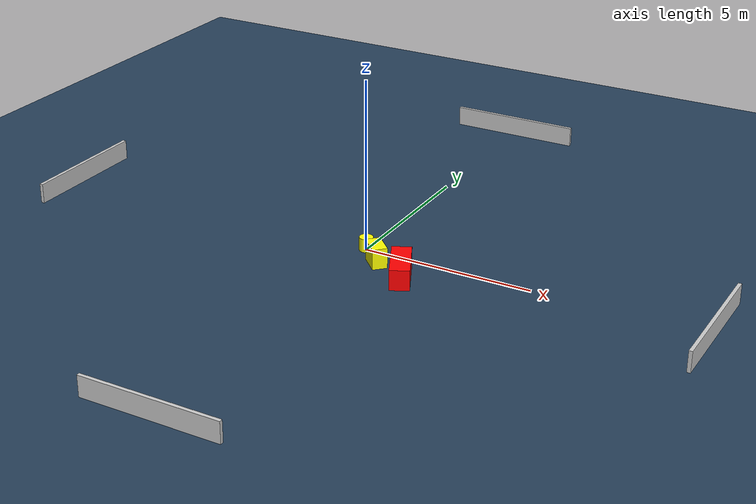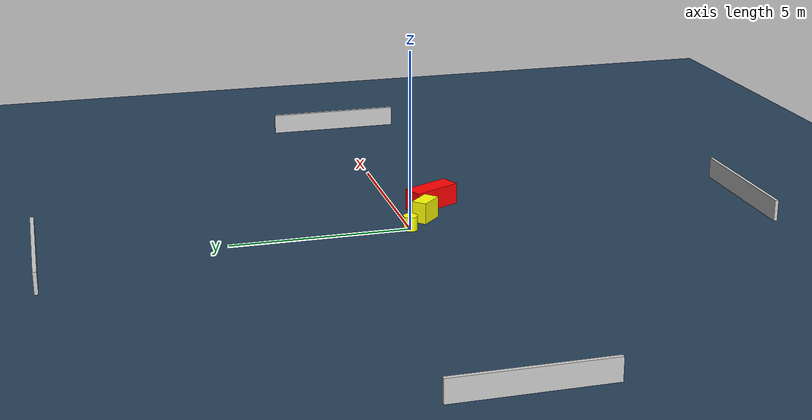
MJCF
<?xml version="1.0" ?>
<mujoco model="generated_environment">
  <option timestep="0.01" integrator="RK4" cone="elliptic"/>
  <default>
    <geom density="1"/>
  </default>
  <asset>
    <texture builtin="gradient" height="3072" name="skybox" rgb1="0.3 0.5 0.7" rgb2="0 0 0" type="skybox" width="512"/>
    <texture builtin="checker" height="300" name="groundplane" rgb1="0.2 0.3 0.4" rgb2="0.1 0.2 0.3" type="2d" width="300"/>
    <material name="groundplane" reflectance="0.2" texrepeat="5 5" texture="groundplane"/>
  </asset>
  <worldbody>
    <light dir="0 0 -1" directional="true" pos="0 0 1.5"/>
    <geom condim="3" friction="0.5 0.005 0.001" material="groundplane" name="floor" pos="0 0 0" size="0 0 0.05" type="plane"/>
    <body name="walls">
      <geom name="wall_1" condim="4" pos="-10.0 0.0 0.3" rgba="0.800000011920929 0.800000011920929 0.800000011920929 1.0" size="0.05 2.0 0.3" type="box"/>
      <geom name="wall_2" condim="4" pos="10.0 0.0 0.3" rgba="0.800000011920929 0.800000011920929 0.800000011920929 1.0" size="0.05 2.0 0.3" type="box"/>
      <geom name="wall_3" condim="4" pos="0.0 -10.0 0.3" rgba="0.800000011920929 0.800000011920929 0.800000011920929 1.0" size="2.0 0.05 0.3" type="box"/>
      <geom name="wall_4" condim="4" pos="0.0 10.0 0.3" rgba="0.800000011920929 0.800000011920929 0.800000011920929 1.0" size="2.0 0.05 0.3" type="box"/>
    </body>
    <body name="robot">
      <joint name="joint_x" type="slide" pos="0 0 0" axis="1 0 0"/>
      <joint name="joint_y" type="slide" pos="0 0 0" axis="0 1 0"/>
      <geom name="robot" type="cylinder" pos="0.0 0.0 0.2" size="0.2 0.2 0.0" mass="5.0" friction="1.0 0.005 0.0001" condim="4" rgba="1.0 1.0 0.0 1.0"/>
    </body>
    <body name="obstacle_1_movable">
      <geom name="obstacle_1_movable" condim="4" pos="0.6601333742310767 -0.6059776892831886 0.3" euler="0 0 135.12348905779686" friction="0.0 0.005 0.001" rgba="1.0 1.0 0.0 1.0" size="0.35807900825898076 0.21358210287439972 0.3" type="box" mass="0.1"/>
      <joint type="free"/>
    </body>
    <body name="obstacle_2_static">
      <geom name="obstacle_2_static" condim="4" pos="1.6624766380745648 -1.0669180621558776 0.3" euler="0 0 115.69982702523095" friction="0.0 0.005 0.001" rgba="1.0 0.0 0.0 1.0" size="0.7254101756612124 0.28065887730115996 0.3" type="box"/>
    </body>
  </worldbody>
  <actuator>
    <motor name="actuator_x" joint="joint_x" gear="1" ctrlrange="-1 1"/>
    <motor name="actuator_y" joint="joint_y" gear="1" ctrlrange="-1 1"/>
  </actuator>
</mujoco>
